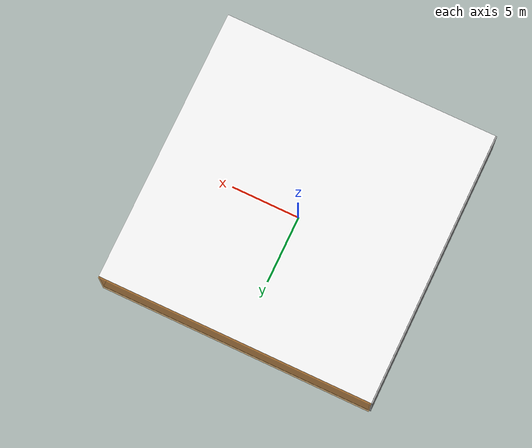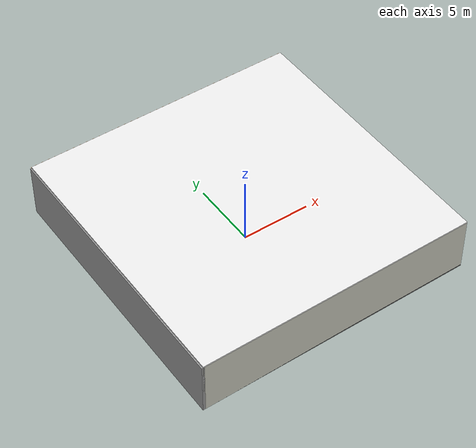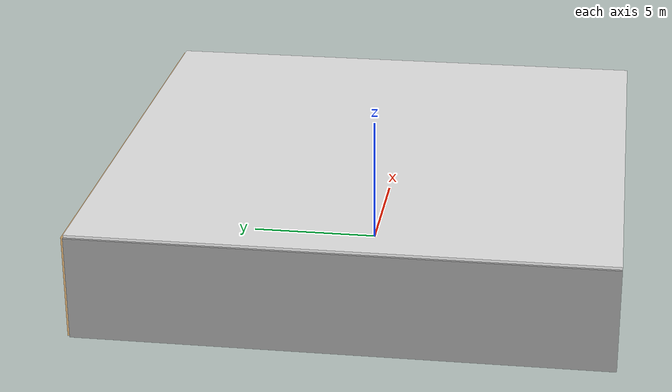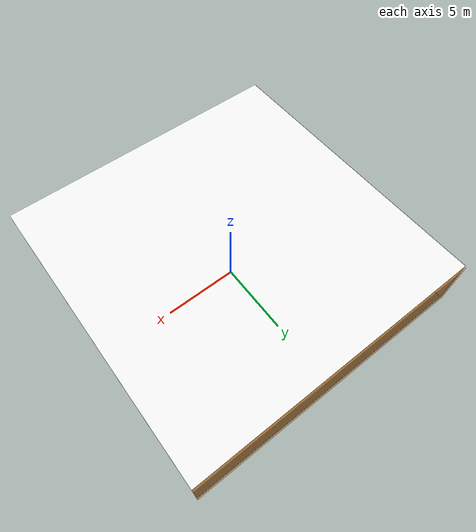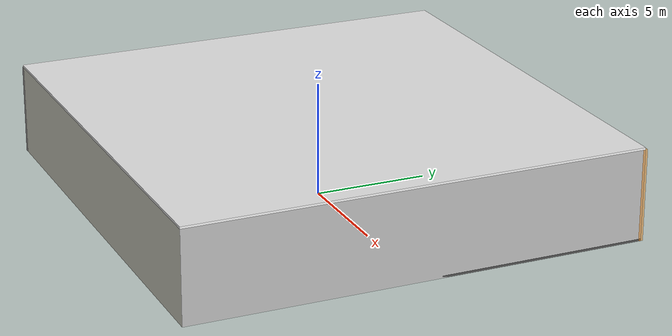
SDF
<sdf version="1.4">
 <world name="default">
  <physics type="ode">
   <max_step_size>0.001</max_step_size>
   <real_time_factor>1</real_time_factor>
   <real_time_update_rate>1000</real_time_update_rate>
   <gravity>0 0 -9.8</gravity>
  </physics>
  <scene><ambient>0.4 0.4 0.4 1</ambient><background>0.7 0.7 0.7 1</background><shadows>1</shadows></scene>
  <model name="Surrounding">
   <static>1</static>
   <link name="Ceiling">
    <collision name="Ceiling_Collision"><geometry><box><size>20 20 0.1</size></box></geometry></collision>
    <visual name="Ceiling_Visual">
     <geometry><box><size>20 20 0.1</size></box></geometry>
     <material>
      <script><uri>file://media/materials/scripts/gazebo.material</uri><name>Gazebo/WhiteGlow</name></script>
     </material>
    </visual>
    <pose>0 0 4.05 0 0 0</pose>
   </link>
   <link name="Wall_South">
    <collision name="Wall_South_Collision">
     <geometry><box><size>20 0 4</size></box></geometry>
     <pose>0 0 2 0 -0 0</pose>
    </collision>
    <visual name="Wall_South_Visual">
     <pose>0 0 2 0 -0 0</pose>
     <geometry><box><size>20 0 4</size></box></geometry>
     <material>
      <script><uri>file://media/materials/scripts/gazebo.material</uri><name>Gazebo/PaintedWall</name></script>
     </material>
    </visual>
    <velocity_decay><linear>0</linear><angular>0</angular></velocity_decay>
    <pose>0 -10 0 0 -0 0</pose>
   </link>
   <link name="Wall_East">
    <collision name="Wall_21_Collision">
     <geometry><box><size>20 0 4</size></box></geometry>
     <pose>0 0 2 0 -0 0</pose>
    </collision>
    <visual name="Wall_21_Visual">
     <pose>0 0 2 0 -0 0</pose>
     <geometry><box><size>20 0 4</size></box></geometry>
     <material>
      <script><uri>file://media/materials/scripts/gazebo.material</uri><name>Gazebo/Pioneer2Body</name></script>
     </material>
    </visual>
    <velocity_decay><linear>0</linear><angular>0</angular></velocity_decay>
    <pose>10 0 0 0 -0 1.5708</pose>
   </link>
   <link name="Wall_North">
    <collision name="Wall_22_Collision">
     <geometry><box><size>20 0.2 4</size></box></geometry>
     <pose>0 0 2 0 -0 0</pose>
    </collision>
    <visual name="Wall_22_Visual">
     <pose>0 0 2 0 -0 0</pose>
     <geometry><box><size>20 0.2 4</size></box></geometry>
     <material>
      <script>
       <uri>file://media/materials/scripts/gazebo.material</uri>
       <name>Gazebo/OrangeTransparent</name>
      </script>
     </material>
    </visual>
    <velocity_decay><linear>0</linear><angular>0</angular></velocity_decay>
    <pose>0 10 0 0 -0 0</pose>
   </link>
   <link name="Wall_West">
    <collision name="Wall_23_Collision">
     <geometry><box><size>20 0.2 4</size></box></geometry>
     <pose>0 0 2 0 -0 0</pose>
    </collision>
    <visual name="Wall_23_Visual">
     <pose>0 0 2 0 -0 0</pose>
     <geometry><box><size>20 0.2 4</size></box></geometry>
     <material>
      <script><uri>file://media/materials/scripts/gazebo.material</uri><name>Gazebo/GreyGradientSky</name></script>
     </material>
    </visual>
    <velocity_decay><linear>0</linear><angular>0</angular></velocity_decay>
    <pose>-10 0 0 0 0 -1.5708</pose>
   </link>
   <link name="Ground_link">
    <collision name="collision">
     <pose>0 0 .05 0 -0 0</pose>
     <geometry><box><size>20 20 0.1</size></box></geometry>
    </collision>
    <visual name="visual">
     <pose>0 0 .05 0 -0 0</pose>
     <geometry><box><size>20 20 0.1</size></box></geometry>
     <material>
      <script><uri>file://media/materials/scripts/gazebo.material</uri><name>Gazebo/Road</name></script>
     </material>
    </visual>
   </link>
   <static>1</static>
  </model>
  <spherical_coordinates>
   <surface_model>EARTH_WGS84</surface_model>
   <latitude_deg>0</latitude_deg>
   <longitude_deg>0</longitude_deg>
   <elevation>0</elevation>
   <heading_deg>0</heading_deg>
  </spherical_coordinates>
  <light name="lightball_0" type="diffuse">
   <diffuse>0.8 0.8 0.8 1</diffuse>
   <specular>0.2 0.2 0.2 1</specular>
   <attenuation>
    <range>100</range>
    <constant>0.7</constant>
    <linear>0.01</linear>
    <quadratic>0.001</quadratic>
   </attenuation>
   <direction>-0.5 0.1 -0.9</direction>
   <pose>-4.04239887621 -4.49417109575 3.31727620713 0 0 0</pose>
  </light>
  <light name="lightball_1" type="diffuse">
   <diffuse>0.8 0.8 0.8 1</diffuse>
   <specular>0.2 0.2 0.2 1</specular>
   <attenuation>
    <range>100</range>
    <constant>0.7</constant>
    <linear>0.01</linear>
    <quadratic>0.001</quadratic>
   </attenuation>
   <direction>-0.5 0.1 -0.9</direction>
   <pose>-1.77215193664 -5.32619694256 0.648450497092 0 0 0</pose>
  </light>
  <light name="lightball_2" type="diffuse">
   <diffuse>0.8 0.8 0.8 1</diffuse>
   <specular>0.2 0.2 0.2 1</specular>
   <attenuation>
    <range>100</range>
    <constant>0.7</constant>
    <linear>0.01</linear>
    <quadratic>0.001</quadratic>
   </attenuation>
   <direction>-0.5 0.1 -0.9</direction>
   <pose>9.85077584953 -2.84850445049 2.29343862717 0 0 0</pose>
  </light>
  <light name="lightball_3" type="diffuse">
   <diffuse>0.8 0.8 0.8 1</diffuse>
   <specular>0.2 0.2 0.2 1</specular>
   <attenuation>
    <range>100</range>
    <constant>0.7</constant>
    <linear>0.01</linear>
    <quadratic>0.001</quadratic>
   </attenuation>
   <direction>-0.5 0.1 -0.9</direction>
   <pose>-5.83494380483 7.56647424962 1.54268230392 0 0 0</pose>
  </light>
  <light name="lightball_4" type="diffuse">
   <diffuse>0.8 0.8 0.8 1</diffuse>
   <specular>0.2 0.2 0.2 1</specular>
   <attenuation>
    <range>100</range>
    <constant>0.7</constant>
    <linear>0.01</linear>
    <quadratic>0.001</quadratic>
   </attenuation>
   <direction>-0.5 0.1 -0.9</direction>
   <pose>0.477018333957 -7.71841374547 1.04100011862 0 0 0</pose>
  </light>
  <light name="lightball_5" type="diffuse">
   <diffuse>0.8 0.8 0.8 1</diffuse>
   <specular>0.2 0.2 0.2 1</specular>
   <attenuation>
    <range>100</range>
    <constant>0.7</constant>
    <linear>0.01</linear>
    <quadratic>0.001</quadratic>
   </attenuation>
   <direction>-0.5 0.1 -0.9</direction>
   <pose>-9.83370956399 5.13308989663 2.0307367359 0 0 0</pose>
  </light>
  <light name="lightball_6" type="diffuse">
   <diffuse>0.8 0.8 0.8 1</diffuse>
   <specular>0.2 0.2 0.2 1</specular>
   <attenuation>
    <range>100</range>
    <constant>0.7</constant>
    <linear>0.01</linear>
    <quadratic>0.001</quadratic>
   </attenuation>
   <direction>-0.5 0.1 -0.9</direction>
   <pose>-4.63718914096 4.44936804894 1.54645414971 0 0 0</pose>
  </light>
  <light name="lightball_7" type="diffuse">
   <diffuse>0.8 0.8 0.8 1</diffuse>
   <specular>0.2 0.2 0.2 1</specular>
   <attenuation>
    <range>100</range>
    <constant>0.7</constant>
    <linear>0.01</linear>
    <quadratic>0.001</quadratic>
   </attenuation>
   <direction>-0.5 0.1 -0.9</direction>
   <pose>-8.0672884155 -9.16441298167 3.27629873146 0 0 0</pose>
  </light>
  <light name="lightball_8" type="diffuse">
   <diffuse>0.8 0.8 0.8 1</diffuse>
   <specular>0.2 0.2 0.2 1</specular>
   <attenuation>
    <range>100</range>
    <constant>0.7</constant>
    <linear>0.01</linear>
    <quadratic>0.001</quadratic>
   </attenuation>
   <direction>-0.5 0.1 -0.9</direction>
   <pose>4.55553519316 -7.0269070017 0.844261966736 0 0 0</pose>
  </light>
  <include><uri>model://cabinet</uri><pose>1.40262942155 -7.91042405199 0 0 0 1.33438250584</pose></include>
  <include><uri>model://cabinet</uri><pose>1.75630525143 -5.33628231775 0 0 0 1.54848569059</pose></include>
  <include><uri>model://cabinet</uri><pose>8.20232822608 -3.60436775603 0 0 0 1.63601095073</pose></include>
 </world>
</sdf>

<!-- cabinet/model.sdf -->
<sdf version="1.5">
  <model name="cabinet">
    <static>true</static>
    <link name="cabinet_bottom_plate">
      <inertial>
        <pose>0 0 -1 0 0 0</pose>
        <inertia>
          <ixx>2.050000</ixx>
          <ixy>0</ixy>
          <ixz>0</ixz>
          <iyy>2.050000</iyy>
          <iyz>0</iyz>
          <izz>2.050000</izz>
        </inertia>
        <mass>25.000000</mass>
      </inertial>
      <collision name="cabinet_bottom_plate_geom">
        <pose>0 0 0.010000 0 0 0</pose>
        <geometry>
          <box>
            <size>0.450000 0.450000 0.020000</size>
          </box>
        </geometry>
      </collision>
      <visual name="cabinet_bottom_plate_geom_visual">
        <pose>0 0 0.010000 0 0 0</pose>
        <geometry>
          <box>
            <size>0.450000 0.450000 0.020000</size>
          </box>
        </geometry>
        <material>
          <script>
            <uri>model://media/materials/scripts/gazebo.material</uri>
            <name>Gazebo/Wood</name>
          </script>
        </material>
      </visual>
      <collision name="cabinet_bottom_plate_geom_cabinet_back_plate">
        <pose>0.235000 0 0.510000 0 0 0</pose>
        <geometry>
          <box>
            <size>0.020000 0.450000 1.020000</size>
          </box>
        </geometry>
      </collision>
      <visual name="cabinet_bottom_plate_geom_cabinet_back_plate_visual">
        <pose>0.235000 0 0.510000 0 0 0</pose>
        <geometry>
          <box>
            <size>0.020000 0.450000 1.020000</size>
          </box>
        </geometry>
        <material>
          <script>
            <uri>model://media/materials/scripts/gazebo.material</uri>
            <name>Gazebo/Wood</name>
          </script>
        </material>
      </visual>
      <collision name="cabinet_bottom_plate_geom_cabinet_left_plate">
        <pose>0 0.235000 0.510000 0 0 0</pose>
        <geometry>
          <box>
            <size>0.450000 0.020000 1.020000</size>
          </box>
        </geometry>
      </collision>
      <visual name="cabinet_bottom_plate_geom_cabinet_left_plate_visual">
        <pose>0 0.235000 0.510000 0 0 0</pose>
        <geometry>
          <box>
            <size>0.450000 0.020000 1.020000</size>
          </box>
        </geometry>
        <material>
          <script>
            <uri>model://media/materials/scripts/gazebo.material</uri>
            <name>Gazebo/Wood</name>
          </script>
        </material>
      </visual>
      <collision name="cabinet_bottom_plate_geom_cabinet_middle_plate">
        <pose>0 0 0.510000 0 0 0</pose>
        <geometry>
          <box>
            <size>0.450000 0.450000 0.020000</size>
          </box>
        </geometry>
      </collision>
      <visual name="cabinet_bottom_plate_geom_cabinet_middle_plate_visual">
        <pose>0 0 0.510000 0 0 0</pose>
        <geometry>
          <box>
            <size>0.450000 0.450000 0.020000</size>
          </box>
        </geometry>
        <material>
          <script>
            <uri>model://media/materials/scripts/gazebo.material</uri>
            <name>Gazebo/Wood</name>
          </script>
        </material>
      </visual>
      <collision name="cabinet_bottom_plate_geom_cabinet_right_plate">
        <pose>0 -0.235000 0.510000 0 0 0</pose>
        <geometry>
          <box>
            <size>0.450000 0.020000 1.020000</size>
          </box>
        </geometry>
      </collision>
      <visual name="cabinet_bottom_plate_geom_cabinet_right_plate_visual">
        <pose>0 -0.235000 0.510000 0 0 0</pose>
        <geometry>
          <box>
            <size>0.450000 0.020000 1.020000</size>
          </box>
        </geometry>
        <material>
          <script>
            <uri>model://media/materials/scripts/gazebo.material</uri>
            <name>Gazebo/Wood</name>
          </script>
        </material>
      </visual>
      <collision name="cabinet_bottom_plate_geom_cabinet_top_plate">
        <pose>0 0 1.010000 0 0 0</pose>
        <geometry>
          <box>
            <size>0.450000 0.450000 0.020000</size>
          </box>
        </geometry>
      </collision>
      <visual name="cabinet_bottom_plate_geom_cabinet_top_plate_visual">
        <pose>0 0 1.010000 0 0 0</pose>
        <geometry>
          <box>
            <size>0.450000 0.450000 0.020000</size>
          </box>
        </geometry>
        <material>
          <script>
            <uri>model://media/materials/scripts/gazebo.material</uri>
            <name>Gazebo/Wood</name>
          </script>
        </material>
      </visual>
    </link>
  </model>
</sdf>
